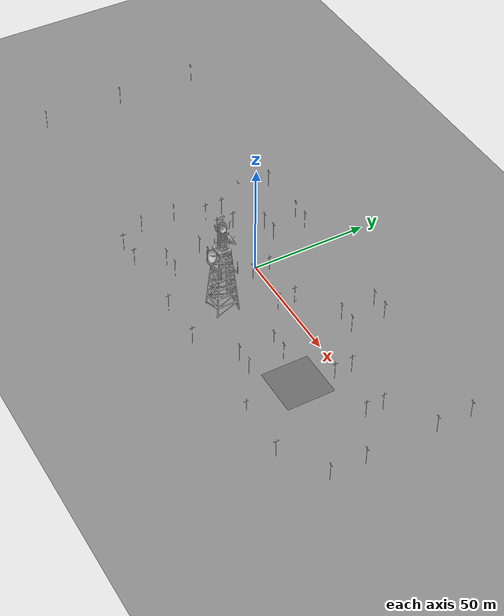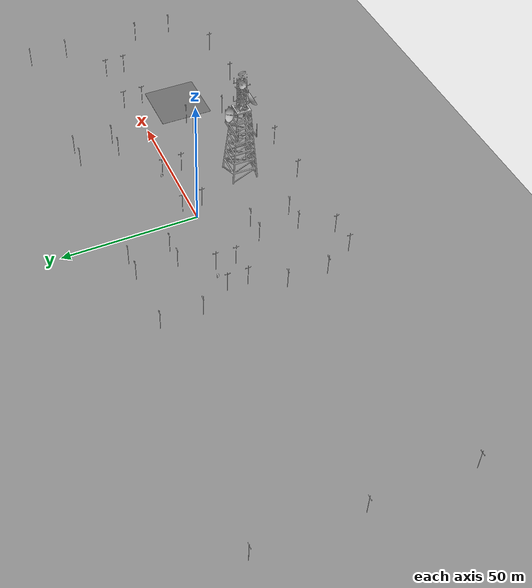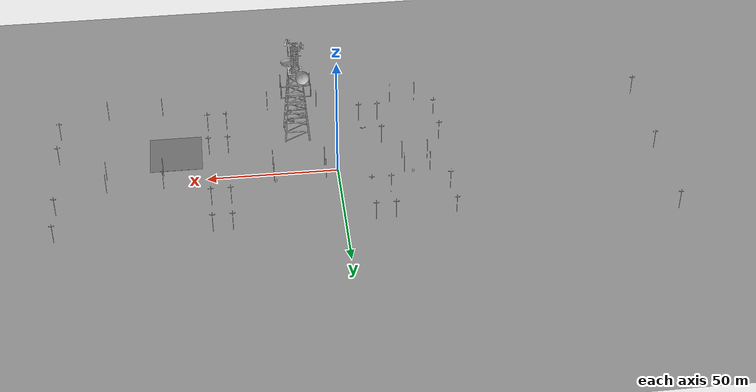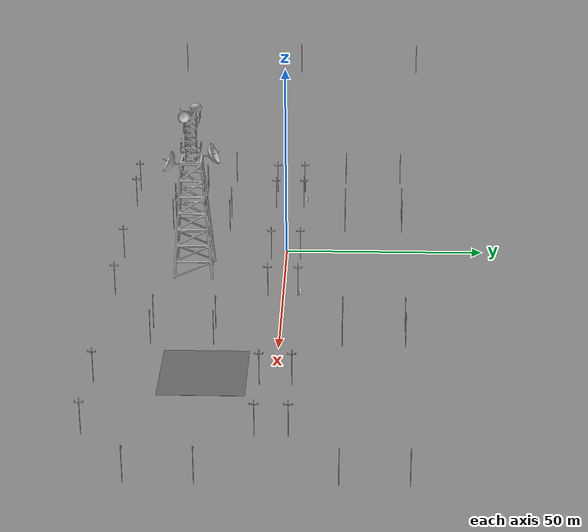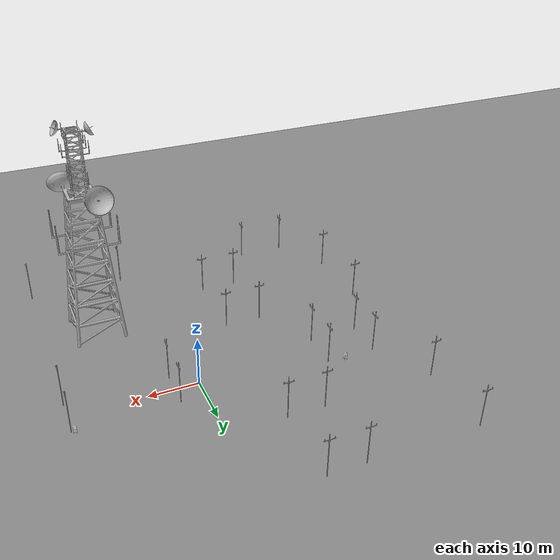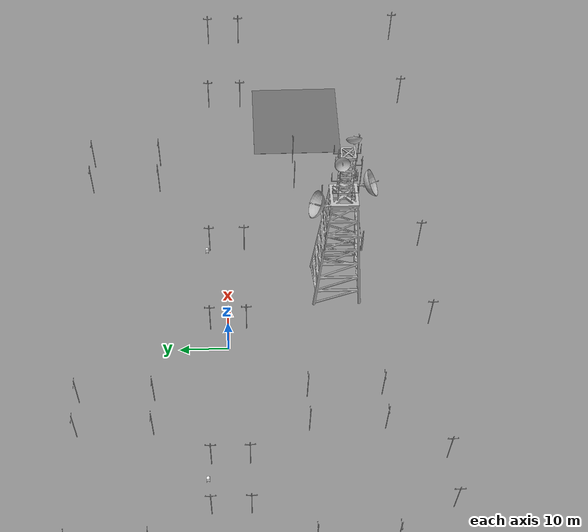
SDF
<sdf version="1.6">
 <world name="small_city">
  <plugin filename="gz-sim-physics-system" name="gz::sim::systems::Physics"/>
  <plugin filename="gz-sim-user-commands-system" name="gz::sim::systems::UserCommands"/>
  <plugin filename="gz-sim-scene-broadcaster-system" name="gz::sim::systems::SceneBroadcaster"/>
  <plugin filename="gz-sim-sensors-system" name="gz::sim::systems::Sensors">
   <render_engine>ogre2</render_engine>
  </plugin>
  <plugin filename="gz-sim-imu-system" name="gz::sim::systems::Imu"/>
  <scene>
   <grid>false</grid>
   <origin_visual>false</origin_visual>
   <ambient>0.47 0.48 0.49 1</ambient>
   <sky><clouds><speed>12</speed></clouds></sky>
   <background>0.63 0.69 0.75 1.0</background>
  </scene>
  <physics name="default_physics" default="0" type="ode">
   <max_step_size>0.005</max_step_size>
   <real_time_factor>1</real_time_factor>
   <real_time_update_rate>200</real_time_update_rate>
  </physics>
  <light type="directional" name="sun">
   <pose>0 0 1000 0 0 0</pose>
   <diffuse>0.92 0.89 0.83 1</diffuse>
   <specular>0.34 0.33 0.29 1</specular>
   <attenuation>
    <range>1000</range>
    <constant>0.9</constant>
    <linear>0.01</linear>
    <quadratic>0.001</quadratic>
   </attenuation>
   <direction>-0.43 0.15 -0.89</direction>
  </light>
  <model name="ground_plane">
   <static>true</static>
   <link name="link">
    <collision name="collision">
     <geometry><plane><normal>0 0 1</normal><size>100 100</size></plane></geometry>
     <surface><friction><ode><mu>100</mu><mu2>50</mu2></ode></friction></surface>
    </collision>
   </link>
  </model>
  <include><static>true</static><name>city_terrain_1</name><uri>model://city_terrain</uri></include>
  <model name="asphalt_plane_74">
   <static>true</static>
   <pose>61.581
    -16.664
    0
    0
    0
    0</pose>
   <link name="link">
    <visual name="visual">
     <geometry><box><size>20
            20
            0.05</size></box></geometry>
     <material>
      <ambient>0.42 0.42 0.42 1.0</ambient>
      <diffuse>0.42 0.42 0.42 1.0</diffuse>
      <specular>0.12 0.12 0.12 1.0</specular>
      <pbr>
       <metal>
        <albedo_map>model://asphalt_plane/materials/textures/tarmac.png</albedo_map>
        <roughness>0.85</roughness>
        <metalness>0.0</metalness>
       </metal>
      </pbr>
     </material>
    </visual>
   </link>
  </model>
  <include>
   <static>true</static>
   <name>postbox_92</name>
   <pose>24.0
      4.33
      0.15
      0
      0
      3.14</pose>
   <uri>model://postbox</uri>
  </include>
  <include>
   <static>true</static>
   <name>radio_tower_124</name>
   <pose>14.0
      -22.5
      1.57965648
      0
      0
      0</pose>
   <uri>model://radio_tower</uri>
  </include>
  <include>
   <static>true</static>
   <name>postbox_144</name>
   <pose>-28.58
      4.33
      0.15
      0
      0
      3.14</pose>
   <uri>model://postbox</uri>
  </include>
  <include>
   <static>true</static>
   <name>telephone_pole_199</name>
   <pose>-41.3
      -30.15
      0.0
      0
      0
      3.14</pose>
   <uri>model://telephone_pole</uri>
  </include>
  <include>
   <static>true</static>
   <name>telephone_pole_200</name>
   <pose>-41.3
      -15.299999999999997
      0.0
      0
      0
      3.14</pose>
   <uri>model://telephone_pole</uri>
  </include>
  <include>
   <static>true</static>
   <name>telephone_pole_201</name>
   <pose>-11.3
      -30.15
      0.0
      0
      0
      3.14</pose>
   <uri>model://telephone_pole</uri>
  </include>
  <include>
   <static>true</static>
   <name>telephone_pole_202</name>
   <pose>-11.3
      -15.299999999999997
      0.0
      0
      0
      3.14</pose>
   <uri>model://telephone_pole</uri>
  </include>
  <include>
   <static>true</static>
   <name>telephone_pole_203</name>
   <pose>-18.7
      -30.15
      0.0
      0
      0
      3.14</pose>
   <uri>model://telephone_pole</uri>
  </include>
  <include>
   <static>true</static>
   <name>telephone_pole_204</name>
   <pose>-18.7
      -15.299999999999997
      0.0
      0
      0
      3.14</pose>
   <uri>model://telephone_pole</uri>
  </include>
  <include>
   <static>true</static>
   <name>telephone_pole_205</name>
   <pose>48.7
      -30.15
      0.0
      0
      0
      3.14</pose>
   <uri>model://telephone_pole</uri>
  </include>
  <include>
   <static>true</static>
   <name>telephone_pole_206</name>
   <pose>48.7
      -15.299999999999997
      0.0
      0
      0
      3.14</pose>
   <uri>model://telephone_pole</uri>
  </include>
  <include>
   <static>true</static>
   <name>telephone_pole_207</name>
   <pose>41.3
      -30.15
      0.0
      0
      0
      3.14</pose>
   <uri>model://telephone_pole</uri>
  </include>
  <include>
   <static>true</static>
   <name>telephone_pole_208</name>
   <pose>41.3
      -15.299999999999997
      0.0
      0
      0
      3.14</pose>
   <uri>model://telephone_pole</uri>
  </include>
  <include>
   <static>true</static>
   <name>telephone_pole_209</name>
   <pose>106.3
      -30.15
      0.0
      0
      0
      3.14</pose>
   <uri>model://telephone_pole</uri>
  </include>
  <include>
   <static>true</static>
   <name>telephone_pole_210</name>
   <pose>106.3
      -15.299999999999997
      0.0
      0
      0
      3.14</pose>
   <uri>model://telephone_pole</uri>
  </include>
  <include>
   <static>true</static>
   <name>telephone_pole_211</name>
   <pose>-41.3
      14.850000000000001
      0.0
      0
      0
      3.14</pose>
   <uri>model://telephone_pole</uri>
  </include>
  <include>
   <static>true</static>
   <name>telephone_pole_212</name>
   <pose>-41.3
      29.700000000000003
      0.0
      0
      0
      3.14</pose>
   <uri>model://telephone_pole</uri>
  </include>
  <include>
   <static>true</static>
   <name>telephone_pole_213</name>
   <pose>-11.3
      14.850000000000001
      0.0
      0
      0
      3.14</pose>
   <uri>model://telephone_pole</uri>
  </include>
  <include>
   <static>true</static>
   <name>telephone_pole_214</name>
   <pose>-11.3
      29.700000000000003
      0.0
      0
      0
      3.14</pose>
   <uri>model://telephone_pole</uri>
  </include>
  <include>
   <static>true</static>
   <name>telephone_pole_215</name>
   <pose>-18.7
      14.850000000000001
      0.0
      0
      0
      3.14</pose>
   <uri>model://telephone_pole</uri>
  </include>
  <include>
   <static>true</static>
   <name>telephone_pole_216</name>
   <pose>-18.7
      29.700000000000003
      0.0
      0
      0
      3.14</pose>
   <uri>model://telephone_pole</uri>
  </include>
  <include>
   <static>true</static>
   <name>telephone_pole_217</name>
   <pose>48.7
      14.850000000000001
      0.0
      0
      0
      3.14</pose>
   <uri>model://telephone_pole</uri>
  </include>
  <include>
   <static>true</static>
   <name>telephone_pole_218</name>
   <pose>48.7
      29.700000000000003
      0.0
      0
      0
      3.14</pose>
   <uri>model://telephone_pole</uri>
  </include>
  <include>
   <static>true</static>
   <name>telephone_pole_219</name>
   <pose>41.3
      14.850000000000001
      0.0
      0
      0
      3.14</pose>
   <uri>model://telephone_pole</uri>
  </include>
  <include>
   <static>true</static>
   <name>telephone_pole_220</name>
   <pose>41.3
      29.700000000000003
      0.0
      0
      0
      3.14</pose>
   <uri>model://telephone_pole</uri>
  </include>
  <include>
   <static>true</static>
   <name>telephone_pole_221</name>
   <pose>106.3
      14.850000000000001
      0.0
      0
      0
      3.14</pose>
   <uri>model://telephone_pole</uri>
  </include>
  <include>
   <static>true</static>
   <name>telephone_pole_222</name>
   <pose>106.3
      29.700000000000003
      0.0
      0
      0
      3.14</pose>
   <uri>model://telephone_pole</uri>
  </include>
  <include>
   <static>true</static>
   <name>telephone_pole_223</name>
   <pose>-35.1
      -41.3
      0.0
      0
      0
      1.57</pose>
   <uri>model://telephone_pole</uri>
  </include>
  <include>
   <static>true</static>
   <name>telephone_pole_224</name>
   <pose>-25.2
      -41.3
      0.0
      0
      0
      1.57</pose>
   <uri>model://telephone_pole</uri>
  </include>
  <include>
   <static>true</static>
   <name>telephone_pole_225</name>
   <pose>-35.1
      3.7
      0.15
      0
      0
      1.57</pose>
   <uri>model://telephone_pole</uri>
  </include>
  <include>
   <static>true</static>
   <name>telephone_pole_226</name>
   <pose>-25.2
      3.7
      0.15
      0
      0
      1.57</pose>
   <uri>model://telephone_pole</uri>
  </include>
  <include>
   <static>true</static>
   <name>telephone_pole_227</name>
   <pose>-35.1
      -3.7
      0.0
      0
      0
      1.57</pose>
   <uri>model://telephone_pole</uri>
  </include>
  <include>
   <static>true</static>
   <name>telephone_pole_228</name>
   <pose>-25.2
      -3.7
      0.0
      0
      0
      1.57</pose>
   <uri>model://telephone_pole</uri>
  </include>
  <include>
   <static>true</static>
   <name>telephone_pole_229</name>
   <pose>4.800000000000001
      -41.3
      0.0
      0
      0
      1.57</pose>
   <uri>model://telephone_pole</uri>
  </include>
  <include>
   <static>true</static>
   <name>telephone_pole_230</name>
   <pose>24.6
      -41.3
      0.0
      0
      0
      1.57</pose>
   <uri>model://telephone_pole</uri>
  </include>
  <include>
   <static>true</static>
   <name>telephone_pole_231</name>
   <pose>4.800000000000001
      3.7
      0.0
      0
      0
      1.57</pose>
   <uri>model://telephone_pole</uri>
  </include>
  <include>
   <static>true</static>
   <name>telephone_pole_232</name>
   <pose>24.6
      3.7
      0.0
      0
      0
      1.57</pose>
   <uri>model://telephone_pole</uri>
  </include>
  <include>
   <static>true</static>
   <name>telephone_pole_233</name>
   <pose>4.800000000000001
      -3.7
      0.0
      0
      0
      1.57</pose>
   <uri>model://telephone_pole</uri>
  </include>
  <include>
   <static>true</static>
   <name>telephone_pole_234</name>
   <pose>24.6
      -3.7
      0.0
      0
      0
      1.57</pose>
   <uri>model://telephone_pole</uri>
  </include>
  <include>
   <static>true</static>
   <name>telephone_pole_235</name>
   <pose>66.45
      -41.3
      0.0
      0
      0
      1.57</pose>
   <uri>model://telephone_pole</uri>
  </include>
  <include>
   <static>true</static>
   <name>telephone_pole_236</name>
   <pose>87.9
      -41.3
      0.0
      0
      0
      1.57</pose>
   <uri>model://telephone_pole</uri>
  </include>
  <include>
   <static>true</static>
   <name>telephone_pole_237</name>
   <pose>66.45
      3.7
      0.0
      0
      0
      1.57</pose>
   <uri>model://telephone_pole</uri>
  </include>
  <include>
   <static>true</static>
   <name>telephone_pole_238</name>
   <pose>87.9
      3.7
      0.0
      0
      0
      1.57</pose>
   <uri>model://telephone_pole</uri>
  </include>
  <include>
   <static>true</static>
   <name>telephone_pole_239</name>
   <pose>66.45
      -3.7
      0.0
      0
      0
      1.57</pose>
   <uri>model://telephone_pole</uri>
  </include>
  <include>
   <static>true</static>
   <name>telephone_pole_240</name>
   <pose>87.9
      -3.7
      0.0
      0
      0
      1.57</pose>
   <uri>model://telephone_pole</uri>
  </include>
  <include>
   <static>true</static>
   <name>urban_detail_sc_telephone_pole_1</name>
   <uri>model://telephone_pole</uri>
   <pose>-124.000 -36.000 0.000 0 0 0.000000</pose>
  </include>
  <include>
   <static>true</static>
   <name>urban_detail_sc_telephone_pole_2</name>
   <uri>model://telephone_pole</uri>
   <pose>-124.000 0.000 0.000 0 0 0.000000</pose>
  </include>
  <include>
   <static>true</static>
   <name>urban_detail_sc_telephone_pole_3</name>
   <uri>model://telephone_pole</uri>
   <pose>-124.000 36.000 0.000 0 0 0.000000</pose>
  </include>
 </world>
</sdf>

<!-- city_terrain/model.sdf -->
<sdf version="1.10">
  <model name="city_terrain">
    <static>true</static>
    <link name="link">

      <collision name="collision">
        <pose>40 -20 -0.05 0 0 0</pose>
        <geometry>
          <plane>
            <normal>0 0 1</normal>
            <size>500 500</size>
          </plane>
        </geometry>
        <surface>
          <contact>
            <ode>
              <kp>1e+06</kp>
              <kd>100</kd>
              <max_vel>1</max_vel>
              <min_depth>0</min_depth>
            </ode>
          </contact>
          <friction>
            <ode>
              <mu>100</mu>
              <mu2>50</mu2>
            </ode>
          </friction>

        </surface>
      </collision>

      <visual name="visual">
        <pose>40 -20 -0.02 0 0 0</pose>
        <geometry>
          <plane>
            <normal>0 0 1</normal>
            <size>500 500</size>
          </plane>
        </geometry>
        <material>
          <ambient>0.55 0.55 0.55 1.0</ambient>
          <diffuse>0.55 0.55 0.55 1.0</diffuse>
          <pbr>
            <metal>
              <albedo_map>model://city_terrain/materials/textures/city_terrain.jpg</albedo_map>
              <roughness>1.0</roughness>
              <metalness>0.0</metalness>
            </metal>
          </pbr>
        </material>
      </visual>

    </link>
  </model>
</sdf>

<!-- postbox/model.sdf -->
<sdf version="1.6">
  <model name="postbox">
    <static>true</static>
    <link name="link">
      <collision name="collision">
        <pose>0 0 0.75 0 0 0</pose>
        <geometry>
          <box>
            <size>0.7 0.5 1.5</size>
          </box>
        </geometry>
      </collision>
      <visual name="visual">
        <geometry>
          <mesh>
            <uri>model://postbox/meshes/postbox.dae</uri>
          </mesh>
        </geometry>
        <material>
          <ambient>1 1 1 1</ambient>
          <diffuse>1 1 1 1</diffuse>
          <pbr>
            <metal>
              <albedo_map>model://postbox/materials/textures/postbox_diffuse.jpg</albedo_map>
              <roughness>0.72</roughness>
              <metalness>0.0</metalness>
            </metal>
          </pbr>
        </material>
      </visual>
    </link>
  </model>
</sdf>

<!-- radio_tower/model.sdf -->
<sdf version="1.6">
  <model name="radio_tower">
    <static>true</static>
    <link name="link">
      <collision name="collision">
        <pose>0 0 22.5 0 0 0</pose>
        <geometry>
          <cylinder>
            <radius>0.5</radius>
            <length>45.0</length>
          </cylinder>
        </geometry>
      </collision>
      <visual name="visual">
        <geometry>
          <mesh>
            <uri>model://radio_tower/meshes/radio_tower.dae</uri>
          </mesh>
        </geometry>
      </visual>
    </link>
  </model>
</sdf>

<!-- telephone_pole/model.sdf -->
<sdf version="1.6">
  <model name="telephone_pole">
    <static>true</static>
    <link name="link">
      <collision name="collision_pole">
        <pose>0 0 4.572 0 0 0</pose>
        <geometry>
          <cylinder>
            <radius>0.07794752</radius>
            <length>9.144</length>
          </cylinder>
        </geometry>
      </collision>
      <visual name="visual">
        <geometry>
          <mesh>
            <uri>model://telephone_pole/meshes/telephone_pole.dae</uri>
          </mesh>
        </geometry>
      </visual>
    </link>
  </model>
</sdf>
